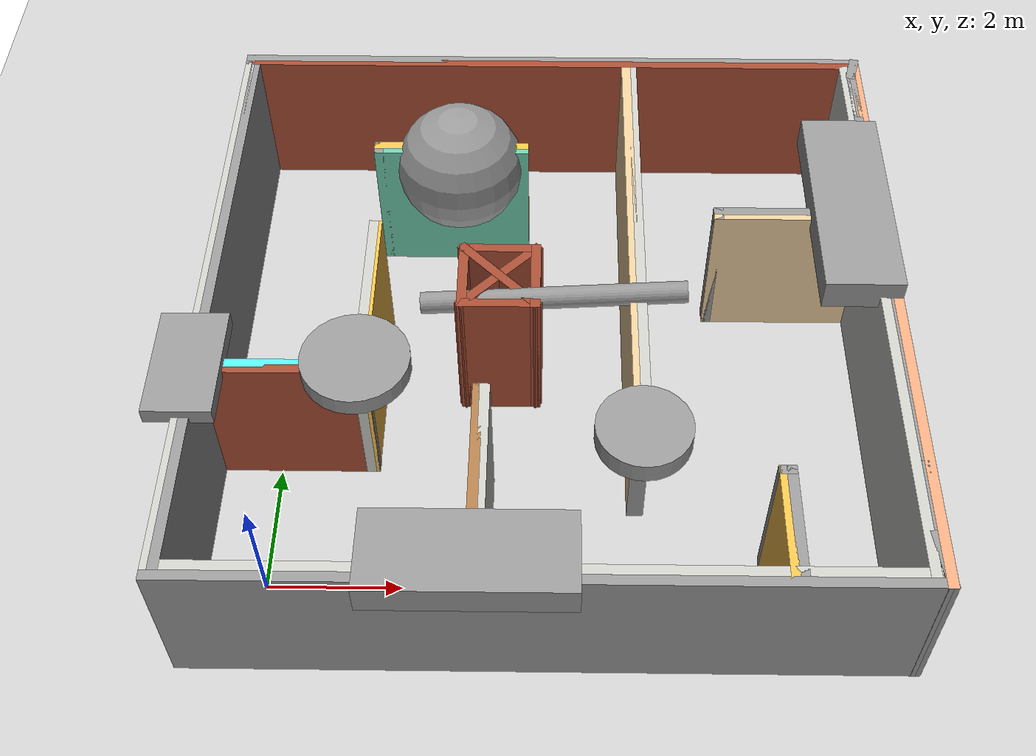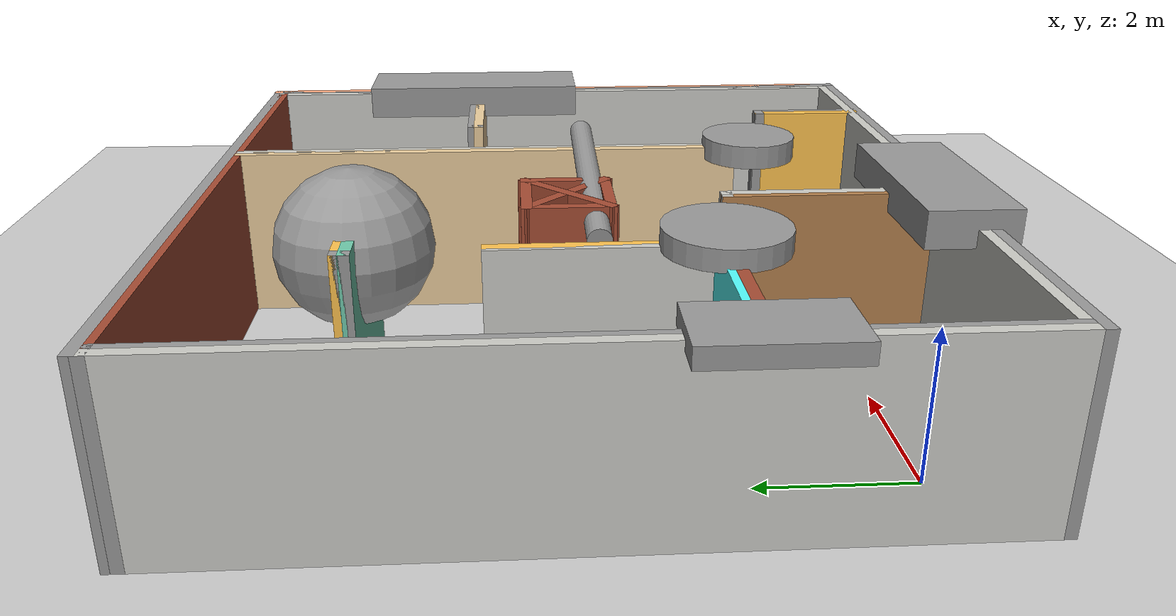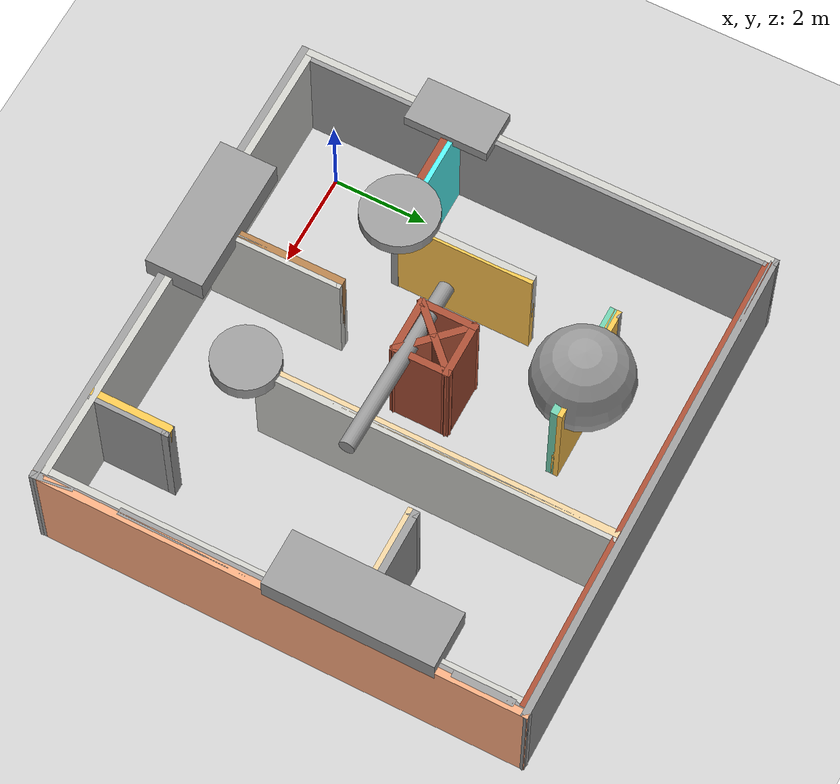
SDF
<sdf version="1.7">
 <world name="default">
  <light name="sun" type="directional">
   <pose>0 0 10 0 -0 0</pose>
   <diffuse>0.8 0.8 0.8 1</diffuse>
   <specular>0.2 0.2 0.2 1</specular>
   <attenuation>
    <range>1000</range>
    <constant>0.9</constant>
    <linear>0.01</linear>
    <quadratic>0.001</quadratic>
   </attenuation>
   <direction>-0.5 0.1 -0.9</direction>
   <spot><inner_angle>0</inner_angle><outer_angle>0</outer_angle><falloff>0</falloff></spot>
  </light>
  <model name="ground_plane">
   <static>1</static>
   <link name="link">
    <collision name="collision">
     <geometry><plane><normal>0 0 1</normal><size>100 100</size></plane></geometry>
     <surface>
      <contact><collide_bitmask>65535</collide_bitmask></contact>
      <friction><ode><mu>100</mu><mu2>50</mu2></ode></friction>
     </surface>
    </collision>
    <visual name="visual">
     <cast_shadows>0</cast_shadows>
     <geometry><plane><normal>0 0 1</normal><size>100 100</size></plane></geometry>
     <material>
      <script><uri>file://media/materials/scripts/gazebo.material</uri><name>Gazebo/Grey</name></script>
     </material>
    </visual>
   </link>
  </model>
  <gravity>0 0 -9.8</gravity>
  <magnetic_field>6e-06 2.3e-05 -4.2e-05</magnetic_field>
  <atmosphere type="adiabatic"/>
  <physics type="ode">
   <max_step_size>0.001</max_step_size>
   <real_time_factor>1</real_time_factor>
   <real_time_update_rate>1000</real_time_update_rate>
  </physics>
  <scene><ambient>0.4 0.4 0.4 1</ambient><background>0.7 0.7 0.7 1</background><shadows>1</shadows></scene>
  <spherical_coordinates>
   <surface_model>EARTH_WGS84</surface_model>
   <latitude_deg>0</latitude_deg>
   <longitude_deg>0</longitude_deg>
   <elevation>0</elevation>
   <heading_deg>0</heading_deg>
  </spherical_coordinates>
  <model name="room">
   <pose>4.12217 3.82844 0 0 -0 0</pose>
   <link name="Wall_0">
    <collision name="Wall_0_Collision">
     <geometry><box><size>10.2261 0.15 2.5</size></box></geometry>
     <pose>0 0 1.25 0 -0 0</pose>
    </collision>
    <visual name="Wall_0_Visual">
     <pose>0 0 1.25 0 -0 0</pose>
     <geometry><box><size>10.2261 0.15 2.5</size></box></geometry>
     <material>
      <script><uri>file://media/materials/scripts/gazebo.material</uri><name>Gazebo/CeilingTiled</name></script>
      <ambient>0.996078 0.47451 0.0196078 1</ambient>
     </material>
     <meta><layer>0</layer></meta>
    </visual>
    <pose>-0.045384 -4.90399 0 0 -0 0</pose>
   </link>
   <link name="Wall_13">
    <collision name="Wall_13_Collision">
     <geometry><box><size>7.5 0.15 2.5</size></box></geometry>
     <pose>0 0 1.25 0 -0 0</pose>
    </collision>
    <visual name="Wall_13_Visual">
     <pose>0 0 1.25 0 -0 0</pose>
     <geometry><box><size>7.5 0.15 2.5</size></box></geometry>
     <material>
      <script><uri>file://media/materials/scripts/gazebo.material</uri><name>Gazebo/Grey</name></script>
      <ambient>0.921569 0.807843 0.615686 1</ambient>
     </material>
     <meta><layer>0</layer></meta>
    </visual>
    <pose>1.2578 1.21082 0 0 -0 -1.5708</pose>
   </link>
   <link name="Wall_15">
    <collision name="Wall_15_Collision">
     <geometry><box><size>2.5 0.15 2.5</size></box></geometry>
     <pose>0 0 1.25 0 -0 0</pose>
    </collision>
    <visual name="Wall_15_Visual">
     <pose>0 0 1.25 0 -0 0</pose>
     <geometry><box><size>2.5 0.15 2.5</size></box></geometry>
     <material>
      <script><uri>file://media/materials/scripts/gazebo.material</uri><name>Gazebo/Grey</name></script>
      <ambient>1 0.764706 0.305882 1</ambient>
     </material>
     <meta><layer>0</layer></meta>
    </visual>
    <pose>-1.6272 2.90582 0 0 -0 0</pose>
   </link>
   <link name="Wall_17">
    <collision name="Wall_17_Collision">
     <geometry><box><size>2.5 0.15 2.5</size></box></geometry>
     <pose>0 0 1.25 0 -0 0</pose>
    </collision>
    <visual name="Wall_17_Visual">
     <pose>0 0 1.25 0 -0 0</pose>
     <geometry><box><size>2.5 0.15 2.5</size></box></geometry>
     <material>
      <script><uri>file://media/materials/scripts/gazebo.material</uri><name>Gazebo/Grey</name></script>
      <ambient>0.921569 0.807843 0.615686 1</ambient>
     </material>
     <meta><layer>0</layer></meta>
    </visual>
    <pose>3.7928 1.38582 0 0 -0 0</pose>
   </link>
   <link name="Wall_19">
    <collision name="Wall_19_Collision">
     <geometry><box><size>1.25 0.15 2.5</size></box></geometry>
     <pose>0 0 1.25 0 -0 0</pose>
    </collision>
    <visual name="Wall_19_Visual">
     <pose>0 0 1.25 0 -0 0</pose>
     <geometry><box><size>1.25 0.15 2.5</size></box></geometry>
     <material>
      <script><uri>file://media/materials/scripts/gazebo.material</uri><name>Gazebo/Bricks</name></script>
      <ambient>1 1 1 1</ambient>
     </material>
     <meta><layer>0</layer></meta>
    </visual>
    <pose>-1.3222 0.115824 0 0 -0 -1.5708</pose>
   </link>
   <link name="Wall_2">
    <collision name="Wall_2_Collision">
     <geometry><box><size>10 0.15 2.5</size></box></geometry>
     <pose>0 0 1.25 0 -0 0</pose>
    </collision>
    <visual name="Wall_2_Visual">
     <pose>0 0 1.25 0 -0 0</pose>
     <geometry><box><size>10 0.15 2.5</size></box></geometry>
     <material>
      <script><uri>file://media/materials/scripts/gazebo.material</uri><name>Gazebo/CeilingTiled</name></script>
      <ambient>1 0.666667 0.498039 1</ambient>
     </material>
     <meta><layer>0</layer></meta>
    </visual>
    <pose>4.97527 0.021006 0 0 -0 1.5708</pose>
   </link>
   <link name="Wall_20">
    <collision name="Wall_20_Collision">
     <geometry><box><size>1.25 0.15 2.5</size></box></geometry>
     <pose>0 0 1.25 0 -0 0</pose>
    </collision>
    <visual name="Wall_20_Visual">
     <pose>0 0 1.25 0 -0 0</pose>
     <geometry><box><size>1.25 0.15 2.5</size></box></geometry>
     <material>
      <script><uri>file://media/materials/scripts/gazebo.material</uri><name>Gazebo/Bricks</name></script>
      <ambient>1 1 1 1</ambient>
     </material>
     <meta><layer>0</layer></meta>
    </visual>
    <pose>-0.772196 -0.434176 0 0 -0 0</pose>
   </link>
   <link name="Wall_21">
    <collision name="Wall_21_Collision">
     <geometry><box><size>1.25 0.15 2.5</size></box></geometry>
     <pose>0 0 1.25 0 -0 0</pose>
    </collision>
    <visual name="Wall_21_Visual">
     <pose>0 0 1.25 0 -0 0</pose>
     <geometry><box><size>1.25 0.15 2.5</size></box></geometry>
     <material>
      <script><uri>file://media/materials/scripts/gazebo.material</uri><name>Gazebo/Bricks</name></script>
      <ambient>1 1 1 1</ambient>
     </material>
     <meta><layer>0</layer></meta>
    </visual>
    <pose>-0.222196 0.115824 0 0 -0 1.5708</pose>
   </link>
   <link name="Wall_22">
    <collision name="Wall_22_Collision">
     <geometry><box><size>1.25 0.15 2.5</size></box></geometry>
     <pose>0 0 1.25 0 -0 0</pose>
    </collision>
    <visual name="Wall_22_Visual">
     <pose>0 0 1.25 0 -0 0</pose>
     <geometry><box><size>1.25 0.15 2.5</size></box></geometry>
     <material>
      <script><uri>file://media/materials/scripts/gazebo.material</uri><name>Gazebo/Bricks</name></script>
      <ambient>1 1 1 1</ambient>
     </material>
     <meta><layer>0</layer></meta>
    </visual>
    <pose>-0.772196 0.665824 0 0 -0 3.14159</pose>
   </link>
   <link name="Wall_28">
    <collision name="Wall_28_Collision">
     <geometry><box><size>0.25 0.15 2.5</size></box></geometry>
     <pose>0 0 1.25 0 -0 0</pose>
    </collision>
    <visual name="Wall_28_Visual">
     <pose>0 0 1.25 0 -0 0</pose>
     <geometry><box><size>0.25 0.15 2.5</size></box></geometry>
     <material>
      <script><uri>file://media/materials/scripts/gazebo.material</uri><name>Gazebo/Grey</name></script>
      <ambient>1 1 1 1</ambient>
     </material>
     <meta><layer>0</layer></meta>
    </visual>
    <pose>-5.13343 4.94601 0 0 -0 3.14159</pose>
   </link>
   <link name="Wall_29">
    <collision name="Wall_29_Collision">
     <geometry><box><size>10 0.15 2.5</size></box></geometry>
     <pose>0 0 1.25 0 -0 0</pose>
    </collision>
    <visual name="Wall_29_Visual">
     <pose>0 0 1.25 0 -0 0</pose>
     <geometry><box><size>10 0.15 2.5</size></box></geometry>
     <material>
      <script><uri>file://media/materials/scripts/gazebo.material</uri><name>Gazebo/CeilingTiled</name></script>
      <ambient>0.996078 0.47451 0.0196078 1</ambient>
     </material>
     <meta><layer>0</layer></meta>
    </visual>
    <pose>-5.18343 0.021006 0 0 -0 -1.5708</pose>
   </link>
   <link name="Wall_3">
    <collision name="Wall_3_Collision">
     <geometry><box><size>10.2261 0.15 2.5</size></box></geometry>
     <pose>0 0 1.25 0 -0 0</pose>
    </collision>
    <visual name="Wall_3_Visual">
     <pose>0 0 1.25 0 -0 0</pose>
     <geometry><box><size>10.2261 0.15 2.5</size></box></geometry>
     <material>
      <script><uri>file://media/materials/scripts/gazebo.material</uri><name>Gazebo/Bricks</name></script>
      <ambient>0.996078 0.47451 0.0196078 1</ambient>
     </material>
     <meta><layer>0</layer></meta>
    </visual>
    <pose>-0.045384 4.94601 0 0 -0 3.14159</pose>
   </link>
   <link name="Wall_37">
    <collision name="Wall_37_Collision">
     <geometry><box><size>0.25 0.15 2.5</size></box></geometry>
     <pose>0 0 1.25 0 -0 0</pose>
    </collision>
    <visual name="Wall_37_Visual">
     <pose>0 0 1.25 0 -0 0</pose>
     <geometry><box><size>0.25 0.15 2.5</size></box></geometry>
     <material>
      <script><uri>file://media/materials/scripts/gazebo.material</uri><name>Gazebo/Grey</name></script>
      <ambient>1 1 1 1</ambient>
     </material>
     <meta><layer>0</layer></meta>
    </visual>
    <pose>-5.18343 4.99601 0 0 -0 1.5708</pose>
   </link>
   <link name="Wall_38">
    <collision name="Wall_38_Collision">
     <geometry><box><size>10.5 0.15 2.5</size></box></geometry>
     <pose>0 0 1.25 0 -0 0</pose>
    </collision>
    <visual name="Wall_38_Visual">
     <pose>0 0 1.25 0 -0 0</pose>
     <geometry><box><size>10.5 0.15 2.5</size></box></geometry>
     <material>
      <script><uri>file://media/materials/scripts/gazebo.material</uri><name>Gazebo/Grey</name></script>
      <ambient>1 1 1 1</ambient>
     </material>
     <meta><layer>0</layer></meta>
    </visual>
    <pose>-0.008428 5.04601 0 0 -0 0</pose>
   </link>
   <link name="Wall_39">
    <collision name="Wall_39_Collision">
     <geometry><box><size>10.25 0.15 2.5</size></box></geometry>
     <pose>0 0 1.25 0 -0 0</pose>
    </collision>
    <visual name="Wall_39_Visual">
     <pose>0 0 1.25 0 -0 0</pose>
     <geometry><box><size>10.25 0.15 2.5</size></box></geometry>
     <material>
      <script><uri>file://media/materials/scripts/gazebo.material</uri><name>Gazebo/Grey</name></script>
      <ambient>1 0.666667 0.498039 1</ambient>
     </material>
     <meta><layer>0</layer></meta>
    </visual>
    <pose>5.16657 -0.003995 0 0 -0 -1.5708</pose>
   </link>
   <link name="Wall_4">
    <collision name="Wall_4_Collision">
     <geometry><box><size>10 0.15 2.5</size></box></geometry>
     <pose>0 0 1.25 0 -0 0</pose>
    </collision>
    <visual name="Wall_4_Visual">
     <pose>0 0 1.25 0 -0 0</pose>
     <geometry><box><size>10 0.15 2.5</size></box></geometry>
     <material>
      <script><uri>file://media/materials/scripts/gazebo.material</uri><name>Gazebo/Grey</name></script>
      <ambient>1 1 1 1</ambient>
     </material>
     <meta><layer>0</layer></meta>
    </visual>
    <pose>-5.08343 0.021006 0 0 -0 -1.5708</pose>
   </link>
   <link name="Wall_40">
    <collision name="Wall_40_Collision">
     <geometry><box><size>10.5 0.15 2.5</size></box></geometry>
     <pose>0 0 1.25 0 -0 0</pose>
    </collision>
    <visual name="Wall_40_Visual">
     <pose>0 0 1.25 0 -0 0</pose>
     <geometry><box><size>10.5 0.15 2.5</size></box></geometry>
     <material>
      <script><uri>file://media/materials/scripts/gazebo.material</uri><name>Gazebo/Grey</name></script>
      <ambient>1 1 1 1</ambient>
     </material>
     <meta><layer>0</layer></meta>
    </visual>
    <pose>-0.008428 -5.05399 0 0 -0 3.14159</pose>
   </link>
   <link name="Wall_42">
    <collision name="Wall_42_Collision">
     <geometry><box><size>0.15 0.15 2.5</size></box></geometry>
     <pose>0 0 1.25 0 -0 0</pose>
    </collision>
    <visual name="Wall_42_Visual">
     <pose>0 0 1.25 0 -0 0</pose>
     <geometry><box><size>0.15 0.15 2.5</size></box></geometry>
     <material>
      <script><uri>file://media/materials/scripts/gazebo.material</uri><name>Gazebo/Grey</name></script>
      <ambient>1 1 1 1</ambient>
     </material>
     <meta><layer>0</layer></meta>
    </visual>
    <pose>5.16657 5.04601 0 0 -0 0</pose>
   </link>
   <link name="Wall_43">
    <collision name="Wall_43_Collision">
     <geometry><box><size>0.15 0.15 2.5</size></box></geometry>
     <pose>0 0 1.25 0 -0 0</pose>
    </collision>
    <visual name="Wall_43_Visual">
     <pose>0 0 1.25 0 -0 0</pose>
     <geometry><box><size>0.15 0.15 2.5</size></box></geometry>
     <material>
      <script><uri>file://media/materials/scripts/gazebo.material</uri><name>Gazebo/Grey</name></script>
      <ambient>1 1 1 1</ambient>
     </material>
     <meta><layer>0</layer></meta>
    </visual>
    <pose>5.16657 5.04601 0 0 -0 0</pose>
   </link>
   <link name="Wall_46">
    <collision name="Wall_46_Collision">
     <geometry><box><size>0.15 0.15 2.5</size></box></geometry>
     <pose>0 0 1.25 0 -0 0</pose>
    </collision>
    <visual name="Wall_46_Visual">
     <pose>0 0 1.25 0 -0 0</pose>
     <geometry><box><size>0.15 0.15 2.5</size></box></geometry>
     <material>
      <script><uri>file://media/materials/scripts/gazebo.material</uri><name>Gazebo/Grey</name></script>
      <ambient>1 1 1 1</ambient>
     </material>
     <meta><layer>0</layer></meta>
    </visual>
    <pose>5.16657 5.04601 0 0 -0 0</pose>
   </link>
   <link name="Wall_47">
    <collision name="Wall_47_Collision">
     <geometry><box><size>0.5 0.15 2.5</size></box></geometry>
     <pose>0 0 1.25 0 -0 0</pose>
    </collision>
    <visual name="Wall_47_Visual">
     <pose>0 0 1.25 0 -0 0</pose>
     <geometry><box><size>0.5 0.15 2.5</size></box></geometry>
     <material>
      <script><uri>file://media/materials/scripts/gazebo.material</uri><name>Gazebo/Grey</name></script>
      <ambient>1 1 1 1</ambient>
     </material>
     <meta><layer>0</layer></meta>
    </visual>
    <pose>5.12128 4.87697 0 0 -0 -1.8326</pose>
   </link>
   <link name="Wall_48">
    <collision name="Wall_48_Collision">
     <geometry><box><size>1.25 0.15 2.5</size></box></geometry>
     <pose>0 0 1.25 0 -0 0</pose>
    </collision>
    <visual name="Wall_48_Visual">
     <pose>0 0 1.25 0 -0 0</pose>
     <geometry><box><size>1.25 0.15 2.5</size></box></geometry>
     <material>
      <script><uri>file://media/materials/scripts/gazebo.material</uri><name>Gazebo/Grey</name></script>
      <ambient>1 1 1 1</ambient>
     </material>
     <meta><layer>0</layer></meta>
    </visual>
    <pose>5.07599 4.15793 0 0 -0 -1.5708</pose>
   </link>
   <link name="Wall_49">
    <collision name="Wall_49_Collision">
     <geometry><box><size>7 0.15 2.5</size></box></geometry>
     <pose>0 0 1.25 0 -0 0</pose>
    </collision>
    <visual name="Wall_49_Visual">
     <pose>0 0 1.25 0 -0 0</pose>
     <geometry><box><size>7 0.15 2.5</size></box></geometry>
     <material>
      <script><uri>file://media/materials/scripts/gazebo.material</uri><name>Gazebo/Grey</name></script>
      <ambient>1 1 1 1</ambient>
     </material>
     <meta><layer>0</layer></meta>
    </visual>
    <pose>5.07599 0.182932 0 0 -0 -1.5708</pose>
   </link>
   <link name="Wall_50">
    <collision name="Wall_50_Collision">
     <geometry><box><size>1.25 0.15 2.5</size></box></geometry>
     <pose>0 0 1.25 0 -0 0</pose>
    </collision>
    <visual name="Wall_50_Visual">
     <pose>0 0 1.25 0 -0 0</pose>
     <geometry><box><size>1.25 0.15 2.5</size></box></geometry>
     <material>
      <script><uri>file://media/materials/scripts/gazebo.material</uri><name>Gazebo/Grey</name></script>
      <ambient>1 1 1 1</ambient>
     </material>
     <meta><layer>0</layer></meta>
    </visual>
    <pose>5.07599 -3.79207 0 0 -0 -1.5708</pose>
   </link>
   <link name="Wall_51">
    <collision name="Wall_51_Collision">
     <geometry><box><size>0.867666 0.15 2.5</size></box></geometry>
     <pose>0 0 1.25 0 -0 0</pose>
    </collision>
    <visual name="Wall_51_Visual">
     <pose>0 0 1.25 0 -0 0</pose>
     <geometry><box><size>0.867666 0.15 2.5</size></box></geometry>
     <material>
      <script><uri>file://media/materials/scripts/gazebo.material</uri><name>Gazebo/Grey</name></script>
      <ambient>1 1 1 1</ambient>
     </material>
     <meta><layer>0</layer></meta>
    </visual>
    <pose>5.12128 -4.69803 0 0 -0 -1.44423</pose>
   </link>
   <link name="Wall_53">
    <collision name="Wall_53_Collision">
     <geometry><box><size>0.15 0.15 2.5</size></box></geometry>
     <pose>0 0 1.25 0 -0 0</pose>
    </collision>
    <visual name="Wall_53_Visual">
     <pose>0 0 1.25 0 -0 0</pose>
     <geometry><box><size>0.15 0.15 2.5</size></box></geometry>
     <material>
      <script><uri>file://media/materials/scripts/gazebo.material</uri><name>Gazebo/Grey</name></script>
      <ambient>1 1 1 1</ambient>
     </material>
     <meta><layer>0</layer></meta>
    </visual>
    <pose>-2.7454 -1.70763 0 0 -0 0</pose>
   </link>
   <link name="Wall_54">
    <collision name="Wall_54_Collision">
     <geometry><box><size>0.15 0.15 2.5</size></box></geometry>
     <pose>0 0 1.25 0 -0 0</pose>
    </collision>
    <visual name="Wall_54_Visual">
     <pose>0 0 1.25 0 -0 0</pose>
     <geometry><box><size>0.15 0.15 2.5</size></box></geometry>
     <material>
      <script><uri>file://media/materials/scripts/gazebo.material</uri><name>Gazebo/Grey</name></script>
      <ambient>1 1 1 1</ambient>
     </material>
     <meta><layer>0</layer></meta>
    </visual>
    <pose>-2.7454 -1.70763 0 0 -0 0</pose>
   </link>
   <link name="Wall_55">
    <collision name="Wall_55_Collision">
     <geometry><box><size>0.209601 0.15 2.5</size></box></geometry>
     <pose>0 0 1.25 0 -0 0</pose>
    </collision>
    <visual name="Wall_55_Visual">
     <pose>0 0 1.25 0 -0 0</pose>
     <geometry><box><size>0.209601 0.15 2.5</size></box></geometry>
     <material>
      <script><uri>file://media/materials/scripts/gazebo.material</uri><name>Gazebo/Grey</name></script>
      <ambient>1 1 1 1</ambient>
     </material>
     <meta><layer>0</layer></meta>
    </visual>
    <pose>-2.7156 -1.70763 0 0 -0 0</pose>
   </link>
   <link name="Wall_56">
    <collision name="Wall_56_Collision">
     <geometry><box><size>3 0.15 2.5</size></box></geometry>
     <pose>0 0 1.25 0 -0 0</pose>
    </collision>
    <visual name="Wall_56_Visual">
     <pose>0 0 1.25 0 -0 0</pose>
     <geometry><box><size>3 0.15 2.5</size></box></geometry>
     <material>
      <script><uri>file://media/materials/scripts/gazebo.material</uri><name>Gazebo/Grey</name></script>
      <ambient>1 0.764706 0.305882 1</ambient>
     </material>
     <meta><layer>0</layer></meta>
    </visual>
    <pose>-2.69245 -0.282631 0 0 -0 1.5708</pose>
   </link>
   <link name="Wall_58">
    <collision name="Wall_58_Collision">
     <geometry><box><size>0.25 0.15 2.5</size></box></geometry>
     <pose>0 0 1.25 0 -0 0</pose>
    </collision>
    <visual name="Wall_58_Visual">
     <pose>0 0 1.25 0 -0 0</pose>
     <geometry><box><size>0.25 0.15 2.5</size></box></geometry>
     <material>
      <script><uri>file://media/materials/scripts/gazebo.material</uri><name>Gazebo/Grey</name></script>
      <ambient>1 1 1 1</ambient>
     </material>
     <meta><layer>0</layer></meta>
    </visual>
    <pose>-2.8022 2.85582 0 0 -0 -1.5708</pose>
   </link>
   <link name="Wall_59">
    <collision name="Wall_59_Collision">
     <geometry><box><size>2.5 0.15 2.5</size></box></geometry>
     <pose>0 0 1.25 0 -0 0</pose>
    </collision>
    <visual name="Wall_59_Visual">
     <pose>0 0 1.25 0 -0 0</pose>
     <geometry><box><size>2.5 0.15 2.5</size></box></geometry>
     <material>
      <script><uri>file://media/materials/scripts/gazebo.material</uri><name>Gazebo/Grey</name></script>
      <ambient>0.435294 0.796078 0.67451 1</ambient>
     </material>
     <meta><layer>0</layer></meta>
    </visual>
    <pose>-1.6272 2.80582 0 0 -0 0</pose>
   </link>
   <link name="Wall_61">
    <collision name="Wall_61_Collision">
     <geometry><box><size>1.70564 0.15 2.5</size></box></geometry>
     <pose>0 0 1.25 0 -0 0</pose>
    </collision>
    <visual name="Wall_61_Visual">
     <pose>0 0 1.25 0 -0 0</pose>
     <geometry><box><size>1.70564 0.15 2.5</size></box></geometry>
     <material>
      <script><uri>file://media/materials/scripts/gazebo.material</uri><name>Gazebo/Bricks</name></script>
      <ambient>1 1 1 1</ambient>
     </material>
     <meta><layer>0</layer></meta>
    </visual>
    <pose>-0.772196 0.115824 0 0 -0 -0.785398</pose>
   </link>
   <link name="Wall_63">
    <collision name="Wall_63_Collision">
     <geometry><box><size>1.70564 0.15 2.5</size></box></geometry>
     <pose>0 0 1.25 0 -0 0</pose>
    </collision>
    <visual name="Wall_63_Visual">
     <pose>0 0 1.25 0 -0 0</pose>
     <geometry><box><size>1.70564 0.15 2.5</size></box></geometry>
     <material>
      <script><uri>file://media/materials/scripts/gazebo.material</uri><name>Gazebo/Bricks</name></script>
      <ambient>1 1 1 1</ambient>
     </material>
     <meta><layer>0</layer></meta>
    </visual>
    <pose>-0.772196 0.115824 0 0 -0 0.785398</pose>
   </link>
   <link name="Wall_68">
    <collision name="Wall_68_Collision">
     <geometry><box><size>3 0.15 2.5</size></box></geometry>
     <pose>0 0 1.25 0 -0 0</pose>
    </collision>
    <visual name="Wall_68_Visual">
     <pose>0 0 1.25 0 -0 0</pose>
     <geometry><box><size>3 0.15 2.5</size></box></geometry>
     <material>
      <script><uri>file://media/materials/scripts/gazebo.material</uri><name>Gazebo/Wood</name></script>
      <ambient>1 1 1 1</ambient>
     </material>
     <meta><layer>0</layer></meta>
    </visual>
    <pose>-1.01514 -3.43429 0 0 -0 1.5708</pose>
   </link>
   <link name="Wall_69">
    <collision name="Wall_69_Collision">
     <geometry><box><size>0.25 0.15 2.5</size></box></geometry>
     <pose>0 0 1.25 0 -0 0</pose>
    </collision>
    <visual name="Wall_69_Visual">
     <pose>0 0 1.25 0 -0 0</pose>
     <geometry><box><size>0.25 0.15 2.5</size></box></geometry>
     <material>
      <script><uri>file://media/materials/scripts/gazebo.material</uri><name>Gazebo/CeilingTiled</name></script>
      <ambient>1 1 1 1</ambient>
     </material>
     <meta><layer>0</layer></meta>
    </visual>
    <pose>-0.965136 -2.00929 0 0 -0 0</pose>
   </link>
   <link name="Wall_7">
    <collision name="Wall_7_Collision">
     <geometry><box><size>2.5 0.15 2.5</size></box></geometry>
     <pose>0 0 1.25 0 -0 0</pose>
    </collision>
    <visual name="Wall_7_Visual">
     <pose>0 0 1.25 0 -0 0</pose>
     <geometry><box><size>2.5 0.15 2.5</size></box></geometry>
     <material>
      <script><uri>file://media/materials/scripts/gazebo.material</uri><name>Gazebo/Bricks</name></script>
      <ambient>1 1 1 1</ambient>
     </material>
     <meta><layer>0</layer></meta>
    </visual>
    <pose>-3.9204 -1.70763 0 0 -0 0</pose>
   </link>
   <link name="Wall_70">
    <collision name="Wall_70_Collision">
     <geometry><box><size>3 0.15 2.5</size></box></geometry>
     <pose>0 0 1.25 0 -0 0</pose>
    </collision>
    <visual name="Wall_70_Visual">
     <pose>0 0 1.25 0 -0 0</pose>
     <geometry><box><size>3 0.15 2.5</size></box></geometry>
     <material>
      <script><uri>file://media/materials/scripts/gazebo.material</uri><name>Gazebo/CeilingTiled</name></script>
      <ambient>1 1 1 1</ambient>
     </material>
     <meta><layer>0</layer></meta>
    </visual>
    <pose>-0.915136 -3.43429 0 0 -0 -1.5708</pose>
   </link>
   <link name="Wall_72">
    <collision name="Wall_72_Collision">
     <geometry><box><size>0.25 0.15 2.5</size></box></geometry>
     <pose>0 0 1.25 0 -0 0</pose>
    </collision>
    <visual name="Wall_72_Visual">
     <pose>0 0 1.25 0 -0 0</pose>
     <geometry><box><size>0.25 0.15 2.5</size></box></geometry>
     <material>
      <script><uri>file://media/materials/scripts/gazebo.material</uri><name>Gazebo/Grey</name></script>
      <ambient>1 1 1 1</ambient>
     </material>
     <meta><layer>0</layer></meta>
    </visual>
    <pose>1.3078 -2.46418 0 0 -0 0</pose>
   </link>
   <link name="Wall_73">
    <collision name="Wall_73_Collision">
     <geometry><box><size>7.5 0.15 2.5</size></box></geometry>
     <pose>0 0 1.25 0 -0 0</pose>
    </collision>
    <visual name="Wall_73_Visual">
     <pose>0 0 1.25 0 -0 0</pose>
     <geometry><box><size>7.5 0.15 2.5</size></box></geometry>
     <material>
      <script><uri>file://media/materials/scripts/gazebo.material</uri><name>Gazebo/CeilingTiled</name></script>
      <ambient>1 0.333333 0.498039 1</ambient>
     </material>
     <meta><layer>0</layer></meta>
    </visual>
    <pose>1.3578 1.21082 0 0 -0 1.5708</pose>
   </link>
   <link name="Wall_75">
    <collision name="Wall_75_Collision">
     <geometry><box><size>0.25 0.15 2.5</size></box></geometry>
     <pose>0 0 1.25 0 -0 0</pose>
    </collision>
    <visual name="Wall_75_Visual">
     <pose>0 0 1.25 0 -0 0</pose>
     <geometry><box><size>0.25 0.15 2.5</size></box></geometry>
     <material>
      <script><uri>file://media/materials/scripts/gazebo.material</uri><name>Gazebo/Grey</name></script>
      <ambient>1 1 1 1</ambient>
     </material>
     <meta><layer>0</layer></meta>
    </visual>
    <pose>2.6178 1.43582 0 0 -0 1.5708</pose>
   </link>
   <link name="Wall_76">
    <collision name="Wall_76_Collision">
     <geometry><box><size>2.5 0.15 2.5</size></box></geometry>
     <pose>0 0 1.25 0 -0 0</pose>
    </collision>
    <visual name="Wall_76_Visual">
     <pose>0 0 1.25 0 -0 0</pose>
     <geometry><box><size>2.5 0.15 2.5</size></box></geometry>
     <material>
      <script><uri>file://media/materials/scripts/gazebo.material</uri><name>Gazebo/Grey</name></script>
      <ambient>1 1 1 1</ambient>
     </material>
     <meta><layer>0</layer></meta>
    </visual>
    <pose>3.7928 1.48582 0 0 -0 0</pose>
   </link>
   <link name="Wall_78">
    <collision name="Wall_78_Collision">
     <geometry><box><size>0.25 0.15 2.5</size></box></geometry>
     <pose>0 0 1.25 0 -0 0</pose>
    </collision>
    <visual name="Wall_78_Visual">
     <pose>0 0 1.25 0 -0 0</pose>
     <geometry><box><size>0.25 0.15 2.5</size></box></geometry>
     <material>
      <script><uri>file://media/materials/scripts/gazebo.material</uri><name>Gazebo/Grey</name></script>
      <ambient>1 1 1 1</ambient>
     </material>
     <meta><layer>0</layer></meta>
    </visual>
    <pose>-5.0954 -1.65763 0 0 -0 1.5708</pose>
   </link>
   <link name="Wall_79">
    <collision name="Wall_79_Collision">
     <geometry><box><size>2.5 0.15 2.5</size></box></geometry>
     <pose>0 0 1.25 0 -0 0</pose>
    </collision>
    <visual name="Wall_79_Visual">
     <pose>0 0 1.25 0 -0 0</pose>
     <geometry><box><size>2.5 0.15 2.5</size></box></geometry>
     <material>
      <script><uri>file://media/materials/scripts/gazebo.material</uri><name>Gazebo/Grey</name></script>
      <ambient>0.333333 1 1 1</ambient>
     </material>
     <meta><layer>0</layer></meta>
    </visual>
    <pose>-3.9204 -1.60763 0 0 -0 0</pose>
   </link>
   <link name="Wall_81">
    <collision name="Wall_81_Collision">
     <geometry><box><size>1.75 0.15 2.5</size></box></geometry>
     <pose>0 0 1.25 0 -0 0</pose>
    </collision>
    <visual name="Wall_81_Visual">
     <pose>0 0 1.25 0 -0 0</pose>
     <geometry><box><size>1.75 0.15 2.5</size></box></geometry>
     <material>
      <script><uri>file://media/materials/scripts/gazebo.material</uri><name>Gazebo/Grey</name></script>
      <ambient>0 0 0 1</ambient>
     </material>
     <meta><layer>0</layer></meta>
    </visual>
    <pose>3.28601 -4.1389 0 0 -0 1.5708</pose>
   </link>
   <link name="Wall_82">
    <collision name="Wall_82_Collision">
     <geometry><box><size>0.25 0.15 2.5</size></box></geometry>
     <pose>0 0 1.25 0 -0 0</pose>
    </collision>
    <visual name="Wall_82_Visual">
     <pose>0 0 1.25 0 -0 0</pose>
     <geometry><box><size>0.25 0.15 2.5</size></box></geometry>
     <material>
      <script><uri>file://media/materials/scripts/gazebo.material</uri><name>Gazebo/Grey</name></script>
      <ambient>1 1 1 1</ambient>
     </material>
     <meta><layer>0</layer></meta>
    </visual>
    <pose>3.23601 -3.3389 0 0 -0 3.14159</pose>
   </link>
   <link name="Wall_83">
    <collision name="Wall_83_Collision">
     <geometry><box><size>1.75 0.15 2.5</size></box></geometry>
     <pose>0 0 1.25 0 -0 0</pose>
    </collision>
    <visual name="Wall_83_Visual">
     <pose>0 0 1.25 0 -0 0</pose>
     <geometry><box><size>1.75 0.15 2.5</size></box></geometry>
     <material>
      <script><uri>file://media/materials/scripts/gazebo.material</uri><name>Gazebo/Grey</name></script>
      <ambient>1 0.764706 0.305882 1</ambient>
     </material>
     <meta><layer>0</layer></meta>
    </visual>
    <pose>3.18601 -4.1389 0 0 -0 -1.5708</pose>
   </link>
   <link name="Wall_9">
    <collision name="Wall_9_Collision">
     <geometry><box><size>3 0.15 2.5</size></box></geometry>
     <pose>0 0 1.25 0 -0 0</pose>
    </collision>
    <visual name="Wall_9_Visual">
     <pose>0 0 1.25 0 -0 0</pose>
     <geometry><box><size>3 0.15 2.5</size></box></geometry>
     <material>
      <script><uri>file://media/materials/scripts/gazebo.material</uri><name>Gazebo/CeilingTiled</name></script>
      <ambient>0.996078 0.47451 0.0196078 1</ambient>
     </material>
     <meta><layer>0</layer></meta>
    </visual>
    <pose>-2.7454 -0.282631 0 0 -0 1.5708</pose>
   </link>
   <static>1</static>
  </model>
  <model name="unit_box">
   <link name="link">
    <inertial>
     <mass>0.460664</mass>
     <inertia>
      <ixx>0.123827</ixx>
      <ixy>0</ixy>
      <ixz>0</ixz>
      <iyy>0.0409679</iyy>
      <iyz>0</iyz>
      <izz>0.159636</izz>
     </inertia>
    </inertial>
    <pose>1.44582 0.674098 2.01017 0 -0 0</pose>
    <visual name="visual">
     <geometry><box><size>1 1.77719 0.259208</size></box></geometry>
     <material>
      <script><name>Gazebo/Grey</name><uri>file://media/materials/scripts/gazebo.material</uri></script>
      <shader type="pixel"/>
     </material>
    </visual>
    <collision name="collision">
     <geometry><box><size>1 1.77719 0.259208</size></box></geometry>
     <surface>
      <friction>
       <ode><mu>1</mu><mu2>1</mu2><fdir1>0 0 0</fdir1><slip1>0</slip1><slip2>0</slip2></ode>
       <torsional>
        <coefficient>1</coefficient>
        <patch_radius>0</patch_radius>
        <surface_radius>0</surface_radius>
        <use_patch_radius>1</use_patch_radius>
        <ode><slip>0</slip></ode>
       </torsional>
      </friction>
      <bounce><restitution_coefficient>0</restitution_coefficient><threshold>1e+06</threshold></bounce>
      <contact>
       <collide_without_contact>0</collide_without_contact>
       <collide_without_contact_bitmask>1</collide_without_contact_bitmask>
       <collide_bitmask>1</collide_bitmask>
       <ode>
        <soft_cfm>0</soft_cfm>
        <soft_erp>0.2</soft_erp>
        <kp>1e+13</kp>
        <kd>1</kd>
        <max_vel>0.01</max_vel>
        <min_depth>0</min_depth>
       </ode>
       <bullet>
        <split_impulse>1</split_impulse>
        <split_impulse_penetration_threshold>-0.01</split_impulse_penetration_threshold>
        <soft_cfm>0</soft_cfm>
        <soft_erp>0.2</soft_erp>
        <kp>1e+13</kp>
        <kd>1</kd>
       </bullet>
      </contact>
     </surface>
    </collision>
   </link>
   <link name="link_0">
    <inertial>
     <mass>1.7968</mass>
     <inertia><ixx>0.26154</ixx><ixy>0</ixy><ixz>0</ixz><iyy>1.30965</iyy><iyz>0</iyz><izz>1.49487</izz></inertia>
    </inertial>
    <pose>5.58353 -2.41806 2.00493 0 -0 0</pose>
    <visual name="visual">
     <geometry><box><size>2.91405 1.22142 0.50483</size></box></geometry>
     <material>
      <lighting>1</lighting>
      <script><uri>file://media/materials/scripts/gazebo.material</uri><name>Gazebo/Grey</name></script>
      <shader type="pixel"/>
     </material>
    </visual>
    <collision name="collision">
     <geometry><box><size>2.91405 1.22142 0.50483</size></box></geometry>
     <surface>
      <friction>
       <ode><mu>1</mu><mu2>1</mu2><fdir1>0 0 0</fdir1><slip1>0</slip1><slip2>0</slip2></ode>
       <torsional>
        <coefficient>1</coefficient>
        <patch_radius>0</patch_radius>
        <surface_radius>0</surface_radius>
        <use_patch_radius>1</use_patch_radius>
        <ode><slip>0</slip></ode>
       </torsional>
      </friction>
      <bounce><restitution_coefficient>0</restitution_coefficient><threshold>1e+06</threshold></bounce>
      <contact>
       <collide_without_contact>0</collide_without_contact>
       <collide_without_contact_bitmask>1</collide_without_contact_bitmask>
       <collide_bitmask>1</collide_bitmask>
       <ode>
        <soft_cfm>0</soft_cfm>
        <soft_erp>0.2</soft_erp>
        <kp>1e+13</kp>
        <kd>1</kd>
        <max_vel>0.01</max_vel>
        <min_depth>0</min_depth>
       </ode>
       <bullet>
        <split_impulse>1</split_impulse>
        <split_impulse_penetration_threshold>-0.01</split_impulse_penetration_threshold>
        <soft_cfm>0</soft_cfm>
        <soft_erp>0.2</soft_erp>
        <kp>1e+13</kp>
        <kd>1</kd>
       </bullet>
      </contact>
     </surface>
    </collision>
   </link>
   <link name="link_1">
    <inertial>
     <mass>8.73512</mass>
     <inertia><ixx>3.70489</ixx><ixy>0</ixy><ixz>0</ixz><iyy>3.70489</iyy><iyz>0</iyz><izz>3.70489</izz></inertia>
    </inertial>
    <pose>5.11782 5.23949 1.58581 0 -0 0</pose>
    <visual name="visual">
     <geometry><sphere><radius>1.02973</radius></sphere></geometry>
     <material>
      <lighting>1</lighting>
      <script><uri>file://media/materials/scripts/gazebo.material</uri><name>Gazebo/Grey</name></script>
      <shader type="pixel"/>
     </material>
    </visual>
    <collision name="collision">
     <geometry><sphere><radius>1.02973</radius></sphere></geometry>
     <surface>
      <friction>
       <ode><mu>1</mu><mu2>1</mu2><fdir1>0 0 0</fdir1><slip1>0</slip1><slip2>0</slip2></ode>
       <torsional>
        <coefficient>1</coefficient>
        <patch_radius>0</patch_radius>
        <surface_radius>0</surface_radius>
        <use_patch_radius>1</use_patch_radius>
        <ode><slip>0</slip></ode>
       </torsional>
      </friction>
      <bounce><restitution_coefficient>0</restitution_coefficient><threshold>1e+06</threshold></bounce>
      <contact>
       <collide_without_contact>0</collide_without_contact>
       <collide_without_contact_bitmask>1</collide_without_contact_bitmask>
       <collide_bitmask>1</collide_bitmask>
       <ode>
        <soft_cfm>0</soft_cfm>
        <soft_erp>0.2</soft_erp>
        <kp>1e+13</kp>
        <kd>1</kd>
        <max_vel>0.01</max_vel>
        <min_depth>0</min_depth>
       </ode>
       <bullet>
        <split_impulse>1</split_impulse>
        <split_impulse_penetration_threshold>-0.01</split_impulse_penetration_threshold>
        <soft_cfm>0</soft_cfm>
        <soft_erp>0.2</soft_erp>
        <kp>1e+13</kp>
        <kd>1</kd>
       </bullet>
      </contact>
     </surface>
    </collision>
   </link>
   <link name="link_3">
    <inertial>
     <mass>0.720875</mass>
     <inertia><ixx>0.11852</ixx><ixy>0</ixy><ixz>0</ixz><iyy>0.11852</iyy><iyz>0</iyz><izz>0.227221</izz></inertia>
    </inertial>
    <pose>3.85367 0.699583 2.09253 0 -0 0</pose>
    <visual name="visual">
     <geometry><cylinder><radius>0.79398</radius><length>0.285869</length></cylinder></geometry>
     <material>
      <lighting>1</lighting>
      <script><uri>file://media/materials/scripts/gazebo.material</uri><name>Gazebo/Grey</name></script>
      <shader type="pixel"/>
     </material>
    </visual>
    <collision name="collision">
     <geometry><cylinder><radius>0.79398</radius><length>0.285869</length></cylinder></geometry>
     <surface>
      <friction>
       <ode><mu>1</mu><mu2>1</mu2><fdir1>0 0 0</fdir1><slip1>0</slip1><slip2>0</slip2></ode>
       <torsional>
        <coefficient>1</coefficient>
        <patch_radius>0</patch_radius>
        <surface_radius>0</surface_radius>
        <use_patch_radius>1</use_patch_radius>
        <ode><slip>0</slip></ode>
       </torsional>
      </friction>
      <bounce><restitution_coefficient>0</restitution_coefficient><threshold>1e+06</threshold></bounce>
      <contact>
       <collide_without_contact>0</collide_without_contact>
       <collide_without_contact_bitmask>1</collide_without_contact_bitmask>
       <collide_bitmask>1</collide_bitmask>
       <ode>
        <soft_cfm>0</soft_cfm>
        <soft_erp>0.2</soft_erp>
        <kp>1e+13</kp>
        <kd>1</kd>
        <max_vel>0.01</max_vel>
        <min_depth>0</min_depth>
       </ode>
       <bullet>
        <split_impulse>1</split_impulse>
        <split_impulse_penetration_threshold>-0.01</split_impulse_penetration_threshold>
        <soft_cfm>0</soft_cfm>
        <soft_erp>0.2</soft_erp>
        <kp>1e+13</kp>
        <kd>1</kd>
       </bullet>
      </contact>
     </surface>
    </collision>
   </link>
   <link name="link_4">
    <inertial>
     <mass>0.639277</mass>
     <inertia>
      <ixx>0.0822807</ixx>
      <ixy>0</ixy>
      <ixz>0</ixz>
      <iyy>0.0822807</iyy>
      <iyz>0</iyz>
      <izz>0.152625</izz>
     </inertia>
    </inertial>
    <pose>7.92604 -0.382496 1.99316 0 -0 0</pose>
    <visual name="visual">
     <geometry><cylinder><radius>0.691009</radius><length>0.334705</length></cylinder></geometry>
     <material>
      <lighting>1</lighting>
      <script><uri>file://media/materials/scripts/gazebo.material</uri><name>Gazebo/Grey</name></script>
      <shader type="pixel"/>
     </material>
    </visual>
    <collision name="collision">
     <geometry><cylinder><radius>0.691009</radius><length>0.334705</length></cylinder></geometry>
     <surface>
      <friction>
       <ode><mu>1</mu><mu2>1</mu2><fdir1>0 0 0</fdir1><slip1>0</slip1><slip2>0</slip2></ode>
       <torsional>
        <coefficient>1</coefficient>
        <patch_radius>0</patch_radius>
        <surface_radius>0</surface_radius>
        <use_patch_radius>1</use_patch_radius>
        <ode><slip>0</slip></ode>
       </torsional>
      </friction>
      <bounce><restitution_coefficient>0</restitution_coefficient><threshold>1e+06</threshold></bounce>
      <contact>
       <collide_without_contact>0</collide_without_contact>
       <collide_without_contact_bitmask>1</collide_without_contact_bitmask>
       <collide_bitmask>1</collide_bitmask>
       <ode>
        <soft_cfm>0</soft_cfm>
        <soft_erp>0.2</soft_erp>
        <kp>1e+13</kp>
        <kd>1</kd>
        <max_vel>0.01</max_vel>
        <min_depth>0</min_depth>
       </ode>
       <bullet>
        <split_impulse>1</split_impulse>
        <split_impulse_penetration_threshold>-0.01</split_impulse_penetration_threshold>
        <soft_cfm>0</soft_cfm>
        <soft_erp>0.2</soft_erp>
        <kp>1e+13</kp>
        <kd>1</kd>
       </bullet>
      </contact>
     </surface>
    </collision>
   </link>
   <link name="link_5">
    <inertial>
     <mass>2.12985</mass>
     <inertia><ixx>2.25109</ixx><ixy>0</ixy><ixz>0</ixz><iyy>0.299921</iyy><iyz>0</iyz><izz>2.46076</izz></inertia>
    </inertial>
    <pose>11.2604 3.85887 2.04405 0 -0 0</pose>
    <visual name="visual">
     <geometry><box><size>1.19815 3.52546 0.504233</size></box></geometry>
     <material>
      <lighting>1</lighting>
      <script><uri>file://media/materials/scripts/gazebo.material</uri><name>Gazebo/Grey</name></script>
      <shader type="pixel"/>
     </material>
    </visual>
    <collision name="collision">
     <geometry><box><size>1.19815 3.52546 0.504233</size></box></geometry>
     <surface>
      <friction>
       <ode><mu>1</mu><mu2>1</mu2><fdir1>0 0 0</fdir1><slip1>0</slip1><slip2>0</slip2></ode>
       <torsional>
        <coefficient>1</coefficient>
        <patch_radius>0</patch_radius>
        <surface_radius>0</surface_radius>
        <use_patch_radius>1</use_patch_radius>
        <ode><slip>0</slip></ode>
       </torsional>
      </friction>
      <bounce><restitution_coefficient>0</restitution_coefficient><threshold>1e+06</threshold></bounce>
      <contact>
       <collide_without_contact>0</collide_without_contact>
       <collide_without_contact_bitmask>1</collide_without_contact_bitmask>
       <collide_bitmask>1</collide_bitmask>
       <ode>
        <soft_cfm>0</soft_cfm>
        <soft_erp>0.2</soft_erp>
        <kp>1e+13</kp>
        <kd>1</kd>
        <max_vel>0.01</max_vel>
        <min_depth>0</min_depth>
       </ode>
       <bullet>
        <split_impulse>1</split_impulse>
        <split_impulse_penetration_threshold>-0.01</split_impulse_penetration_threshold>
        <soft_cfm>0</soft_cfm>
        <soft_erp>0.2</soft_erp>
        <kp>1e+13</kp>
        <kd>1</kd>
       </bullet>
      </contact>
     </surface>
    </collision>
   </link>
   <link name="link_6">
    <inertial>
     <mass>0.434581</mass>
     <inertia>
      <ixx>0.579049</ixx>
      <ixy>0</ixy>
      <ixz>0</ixz>
      <iyy>0.579049</iyy>
      <iyz>0</iyz>
      <izz>0.0059186</izz>
     </inertia>
    </inertial>
    <pose>6.66678 2.12689 1.90176 0 1.49177 0</pose>
    <visual name="visual">
     <geometry><cylinder><radius>0.16504</radius><length>3.98841</length></cylinder></geometry>
     <material>
      <lighting>1</lighting>
      <script><uri>file://media/materials/scripts/gazebo.material</uri><name>Gazebo/Grey</name></script>
      <shader type="pixel"/>
     </material>
    </visual>
    <collision name="collision">
     <geometry><cylinder><radius>0.16504</radius><length>3.98841</length></cylinder></geometry>
     <surface>
      <friction>
       <ode><mu>1</mu><mu2>1</mu2><fdir1>0 0 0</fdir1><slip1>0</slip1><slip2>0</slip2></ode>
       <torsional>
        <coefficient>1</coefficient>
        <patch_radius>0</patch_radius>
        <surface_radius>0</surface_radius>
        <use_patch_radius>1</use_patch_radius>
        <ode><slip>0</slip></ode>
       </torsional>
      </friction>
      <bounce><restitution_coefficient>0</restitution_coefficient><threshold>1e+06</threshold></bounce>
      <contact>
       <collide_without_contact>0</collide_without_contact>
       <collide_without_contact_bitmask>1</collide_without_contact_bitmask>
       <collide_bitmask>1</collide_bitmask>
       <ode>
        <soft_cfm>0</soft_cfm>
        <soft_erp>0.2</soft_erp>
        <kp>1e+13</kp>
        <kd>1</kd>
        <max_vel>0.01</max_vel>
        <min_depth>0</min_depth>
       </ode>
       <bullet>
        <split_impulse>1</split_impulse>
        <split_impulse_penetration_threshold>-0.01</split_impulse_penetration_threshold>
        <soft_cfm>0</soft_cfm>
        <soft_erp>0.2</soft_erp>
        <kp>1e+13</kp>
        <kd>1</kd>
       </bullet>
      </contact>
     </surface>
    </collision>
   </link>
   <static>1</static>
   <pose>-2.4933 1.46164 0.5 0 -0 0</pose>
  </model>
 </world>
</sdf>
